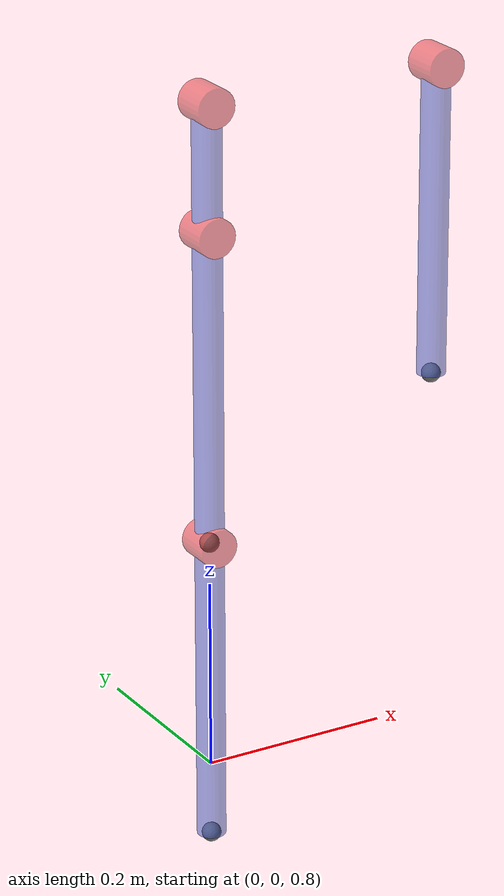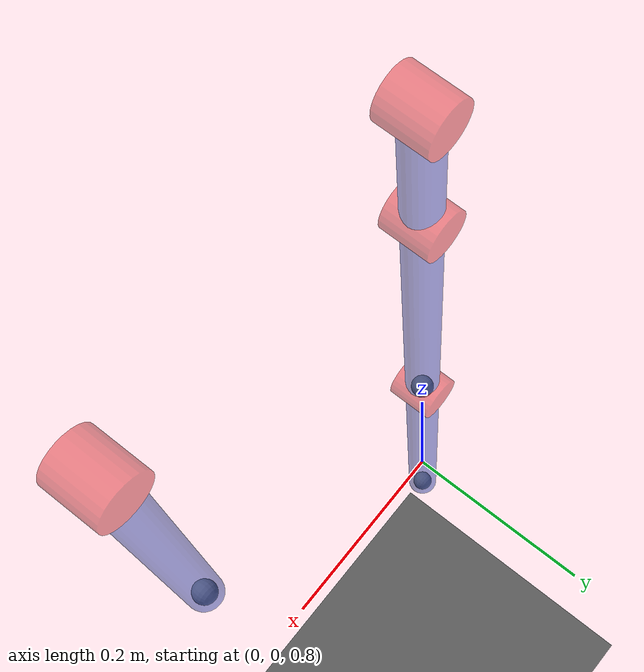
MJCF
<?xml version='1.0' encoding='UTF-8'?>
<mujoco>

    <option timestep="1e-4"/>
    <option gravity="0 0 -9.8"/>

    <asset>
        <texture type="skybox" builtin="gradient" rgb1="1 1 1" rgb2="0.5 0.5 0.5" width="265" height="256"/>
        <texture name="grid" type="2d" builtin="checker" rgb1="0.1 0.1 0.1" rgb2="0.6 0.6 0.6" width="300" height="300"/>
        <material name="grid" texture="grid" texrepeat="10 10" reflectance="0.2"/>
    </asset>

    <worldbody>
        <light pos="0 0 10"/>
        <geom type="plane" size="0.5 0.5 0.1" material="grid"/>

        <camera name="side view" pos="0.1 -1.5 1.0" euler="90 0 0" fovy="60"/>
        <camera name="upper view" pos="0 0 1.5" euler="0 0 0"/>

        <body name="ABC1P" pos="0 0 1.5" euler="90 0 0">

            <joint name="A" type="hinge" axis="0 0 1" stiffness="0" springref="0" damping="0"/>
            <geom name="point A" type="cylinder" pos="0 0 0" size="0.02 0.02" rgba="0.89 0.14 0.16 0.5" euler="0 0 0" contype="0"/>
            <geom name="link AB" type="cylinder" pos="0 -0.06488483583358025 0" size="0.015 0.06488483583358025" rgba="0.21 0.32 0.82 0.5" euler="90 0 0" contype="0"/>

            <body name="BC1P" pos="0 -0.1297696716671605 0" euler="0 0 0">

                <joint name="B" type="hinge" axis="0 0 1" stiffness="0" springref="0" damping="0.1"/>
                <geom name="point B" type="cylinder" pos="0 0 0" size="0.02 0.02" rgba="0.89 0.14 0.16 0.5" euler="0 0 0" contype="0"/>
                <geom name="link BC" type="cylinder" pos="0 -0.1622120895839506 0" size="0.015 0.1622120895839506" rgba="0.21 0.32 0.82 0.5" euler="90 0 0" contype="0"/>
                <site name="sC1" size="0.01" pos="0 -0.3244241791679012 0"/>

                <body name="CP" pos="0 -0.3244241791679012 0" euler="0 0 0">

                    <geom name="point C1" type="cylinder" pos="0 0 0" size="0.02 0.02" rgba="0.89 0.14 0.16 0.5" euler="0 0 0" contype="0"/>
                    <geom name="link CP" type="cylinder" pos="0 -0.1622120895839506 0" size="0.015 0.1622120895839506" rgba="0.21 0.32 0.82 0.5" euler="90 0 0" contype="0"/>
                    <site name="sP" size="0.01" pos="0 -0.3244241791679012 0"/>

                </body>

            </body>

        </body>

        <body name="DC2" pos="0.259539343334321 0 1.5" euler="90 0 0">

            <joint name="D" type="hinge" axis="0 0 1" stiffness="0" springref="0" damping="0.1"/>
            <geom name="point D" type="cylinder" pos="0 0 0" size="0.02 0.02" rgba="0.89 0.14 0.16 0.5" euler="0 0 0" contype="0"/>
            <geom name="link DC" type="cylinder" pos="0 -0.1622120895839506 0" size="0.015 0.1622120895839506" rgba="0.21 0.32 0.82 0.5" euler="90 0 0" contype="0"/>
            <site name="sC2" size="0.01" pos="0 -0.3244241791679012 0"/>

        </body>

    </worldbody>

    <equality>
        <connect site1="sC1" site2="sC2"/>
    </equality>

    <actuator>
        <position name="A" joint="A"/>
    </actuator>

    <sensor>
        <framepos objtype="site" objname="sP"/>
    </sensor>

</mujoco>
